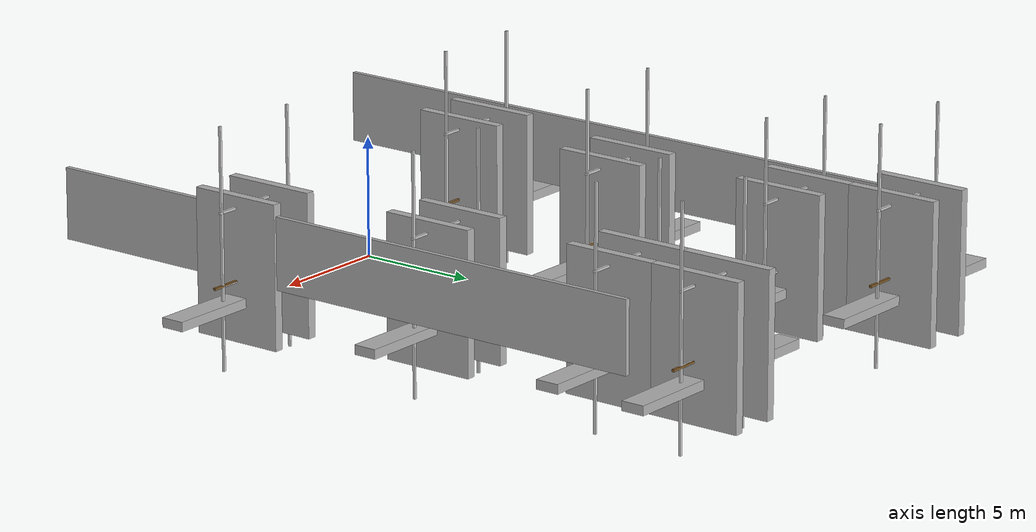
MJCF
<mujoco model="construction_scene">
  <asset>
    <!-- Textures for construction materials -->
    <texture name="concrete_texture" type="2d" builtin="flat" rgb1="0.7 0.7 0.7" width="100" height="100"/>
    <material name="concrete_material" texture="concrete_texture" reflectance="0.2"/>
    <texture name="wood_texture" type="2d" builtin="flat" rgb1="0.5 0.35 0.15" width="100" height="100"/>
    <material name="wood_material" texture="wood_texture" reflectance="0.2"/>
    <texture name="metal_texture" type="2d" builtin="flat" rgb1="0.8 0.8 0.8" width="100" height="100"/>
    <material name="metal_material" texture="metal_texture" reflectance="0.2"/>
  </asset>

  <worldbody>
    <!-- Large Vertical Wall at the Back (60 feet long) -->
    <body name="back_wall" pos="8 5 0">  <!-- 30 feet behind the robot -->
      <geom name="back_wall_geom" type="box" size="0.1 14 1.5" pos="0 0 2.5" material="concrete_material"/>
    </body>

    <!-- Large Vertical Wall at the Back (60 feet long) -->
    <body name="left_wall" pos="-10 5 0">  <!-- 30 feet behind the robot -->
      <geom name="left_wall_geom" type="box" size="0.1 14 1.5" pos="0 0 2.5" material="concrete_material"/>
    </body>

    <!-- Left Side: Semi-constructed buildings (vertical path) -->
    <!-- Building 1 -->
    <body name="left_building_1" pos="-7 0 0">  <!-- 10 feet to the left of the robot -->
      <!-- Foundation -->
      <geom name="left_foundation_1" type="box" size="5 0.5 0.2" pos="0 0 0.2" material="concrete_material"/>

      <!-- Scaffolding -->
      <body name="left_scaffolding_1" pos="0 0 0">
        <!-- Vertical beams -->
        <geom name="left_scaffold_beam_1_1" type="box" size="0.05 0.05 5" pos="-2 0 2.5" material="metal_material"/>
        <geom name="left_scaffold_beam_1_2" type="box" size="0.05 0.05 5" pos="2 0 2.5" material="metal_material"/>

        <!-- Horizontal beams -->
        <geom name="left_scaffold_beam_1_3" type="box" size="2.1 0.05 0.05" pos="0 0 1" material="metal_material"/>
        <geom name="left_scaffold_beam_1_4" type="box" size="2.1 0.05 0.05" pos="0 0 4" material="metal_material"/>
      </body>

      <!-- Half-constructed walls -->
      <geom name="left_wall_1_1" type="box" size="0.2 2 3" pos="-1 0 1.5" material="concrete_material"/>
      <geom name="left_wall_1_2" type="box" size="0.2 2 3" pos="1 0 1.5" material="concrete_material"/>

      <!-- Construction materials (wooden planks) -->
      <body name="left_planks_1" pos="0 0 0.5">
        <geom name="left_plank_1_1" type="box" size="1 0.05 0.05" pos="-1.5 0 0.5" material="wood_material"/>
        <geom name="left_plank_1_2" type="box" size="1 0.05 0.05" pos="1.5 0 0.5" material="wood_material"/>
      </body>
    </body>

    <!-- Building 2 (4 feet behind Building 1) -->
    <body name="left_building_2" pos="-6 8 0">  <!-- 4 feet behind Building 1 -->
      <!-- Foundation -->
      <geom name="left_foundation_2" type="box" size="5 0.5 0.2" pos="0 0 0.2" material="concrete_material"/>

      <!-- Scaffolding -->
      <body name="left_scaffolding_2" pos="0 0 0">
        <!-- Vertical beams -->
        <geom name="left_scaffold_beam_2_1" type="box" size="0.05 0.05 5" pos="-2 0 2.5" material="metal_material"/>
        <geom name="left_scaffold_beam_2_2" type="box" size="0.05 0.05 5" pos="2 0 2.5" material="metal_material"/>

        <!-- Horizontal beams -->
        <geom name="left_scaffold_beam_2_3" type="box" size="2.1 0.05 0.05" pos="0 0 1" material="metal_material"/>
        <geom name="left_scaffold_beam_2_4" type="box" size="2.1 0.05 0.05" pos="0 0 4" material="metal_material"/>
      </body>

      <!-- Half-constructed walls -->
      <geom name="left_wall_2_1" type="box" size="0.2 2 3" pos="-1 0 1.5" material="concrete_material"/>
      <geom name="left_wall_2_2" type="box" size="0.2 2 3" pos="1 0 1.5" material="concrete_material"/>

      <!-- Construction materials (wooden planks) -->
      <body name="left_planks_2" pos="0 0 0.5">
        <geom name="left_plank_2_1" type="box" size="1 0.05 0.05" pos="-1.5 0 0.5" material="wood_material"/>
        <geom name="left_plank_2_2" type="box" size="1 0.05 0.05" pos="1.5 0 0.5" material="wood_material"/>
      </body>
    </body>

    <!-- Building 3 (4 feet behind Building 2) -->
    <body name="left_building_3" pos="-7 16 0">  <!-- 4 feet behind Building 2 -->
      <!-- Foundation -->
      <geom name="left_foundation_3" type="box" size="5 0.5 0.2" pos="0 0 0.2" material="concrete_material"/>

      <!-- Scaffolding -->
      <body name="left_scaffolding_3" pos="0 0 0">
        <!-- Vertical beams -->
        <geom name="left_scaffold_beam_3_1" type="box" size="0.05 0.05 5" pos="-2 0 2.5" material="metal_material"/>
        <geom name="left_scaffold_beam_3_2" type="box" size="0.05 0.05 5" pos="2 0 2.5" material="metal_material"/>

        <!-- Horizontal beams -->
        <geom name="left_scaffold_beam_3_3" type="box" size="2.1 0.05 0.05" pos="0 0 1" material="metal_material"/>
        <geom name="left_scaffold_beam_3_4" type="box" size="2.1 0.05 0.05" pos="0 0 4" material="metal_material"/>
      </body>

      <!-- Half-constructed walls -->
      <geom name="left_wall_3_1" type="box" size="0.2 2 3" pos="-1 0 1.5" material="concrete_material"/>
      <geom name="left_wall_3_2" type="box" size="0.2 2 3" pos="1 0 1.5" material="concrete_material"/>

      <!-- Construction materials (wooden planks) -->
      <body name="left_planks_3" pos="0 0 0.5">
        <geom name="left_plank_3_1" type="box" size="1 0.05 0.05" pos="-1.5 0 0.5" material="wood_material"/>
        <geom name="left_plank_3_2" type="box" size="1 0.05 0.05" pos="1.5 0 0.5" material="wood_material"/>
      </body>
    </body>

<!-- Building 4 (4 feet behind Building 3) -->

    <body name="left_building_4" pos="-9 20 0">  <!-- 4 feet behind Building 3 -->
      <!-- Foundation -->
      <geom name="left_foundation_4" type="box" size="5 0.5 0.2" pos="0 0 0.2" material="concrete_material"/>

      <!-- Scaffolding -->
      <body name="left_scaffolding_4" pos="0 0 0">
        <!-- Vertical beams -->
        <geom name="left_scaffold_beam_4_1" type="box" size="0.05 0.05 5" pos="-2 0 2.5" material="metal_material"/>
        <geom name="left_scaffold_beam_4_2" type="box" size="0.05 0.05 5" pos="2 0 2.5" material="metal_material"/>

        <!-- Horizontal beams -->
        <geom name="left_scaffold_beam_4_3" type="box" size="2.1 0.05 0.05" pos="0 0 1" material="metal_material"/>
        <geom name="left_scaffold_beam_4_4" type="box" size="2.1 0.05 0.05" pos="0 0 4" material="metal_material"/>
      </body>

      <!-- Half-constructed walls -->
      <geom name="left_wall_4_1" type="box" size="0.2 2 3" pos="-1 0 1.5" material="concrete_material"/>
      <geom name="left_wall_4_2" type="box" size="0.2 2 3" pos="1 0 1.5" material="concrete_material"/>

      <!-- Construction materials (wooden planks) -->
      <body name="left_planks_4" pos="0 0 0.5">
        <geom name="left_plank_4_1" type="box" size="1 0.05 0.05" pos="-1.5 0 0.5" material="wood_material"/>
        <geom name="left_plank_4_2" type="box" size="1 0.05 0.05" pos="1.5 0 0.5" material="wood_material"/>
      </body>
    </body>

    <!-- Right Side: Replicate the left side with a 20-foot gap (vertical path) -->
    <!-- Building 1 -->
    <body name="right_building_1" pos="7 0 0">  <!-- 10 feet to the right of the robot -->
      <!-- Foundation -->
      <geom name="right_foundation_1" type="box" size="5 0.5 0.2" pos="0 0 0.2" material="concrete_material"/>

      <!-- Scaffolding -->
      <body name="right_scaffolding_1" pos="0 0 0">
        <!-- Vertical beams -->
        <geom name="right_scaffold_beam_1_1" type="box" size="0.05 0.05 5" pos="-2 0 2.5" material="metal_material"/>
        <geom name="right_scaffold_beam_1_2" type="box" size="0.05 0.05 5" pos="2 0 2.5" material="metal_material"/>

        <!-- Horizontal beams -->
        <geom name="right_scaffold_beam_1_3" type="box" size="2.1 0.05 0.05" pos="0 0 1" material="metal_material"/>
        <geom name="right_scaffold_beam_1_4" type="box" size="2.1 0.05 0.05" pos="0 0 4" material="metal_material"/>
      </body>

      <!-- Half-constructed walls -->
      <geom name="right_wall_1_1" type="box" size="0.2 2 3" pos="-1 0 1.5" material="concrete_material"/>
      <geom name="right_wall_1_2" type="box" size="0.2 2 3" pos="1 0 1.5" material="concrete_material"/>

      <!-- Construction materials (wooden planks) -->
      <body name="right_planks_1" pos="0 0 0.5">
        <geom name="right_plank_1_1" type="box" size="1 0.05 0.05" pos="-1.5 0 0.5" material="wood_material"/>
        <geom name="right_plank_1_2" type="box" size="1 0.05 0.05" pos="1.5 0 0.5" material="wood_material"/>
      </body>
    </body>

    <!-- Building 2 (4 feet behind Building 1) -->
    <body name="right_building_2" pos="5 8 0">  <!-- 4 feet behind Building 1 -->
      <!-- Foundation -->
      <geom name="right_foundation_2" type="box" size="5 0.5 0.2" pos="0 0 0.2" material="concrete_material"/>

      <!-- Scaffolding -->
      <body name="right_scaffolding_2" pos="0 0 0">
        <!-- Vertical beams -->
        <geom name="right_scaffold_beam_2_1" type="box" size="0.05 0.05 5" pos="-2 0 2.5" material="metal_material"/>
        <geom name="right_scaffold_beam_2_2" type="box" size="0.05 0.05 5" pos="2 0 2.5" material="metal_material"/>

        <!-- Horizontal beams -->
        <geom name="right_scaffold_beam_2_3" type="box" size="2.1 0.05 0.05" pos="0 0 1" material="metal_material"/>
        <geom name="right_scaffold_beam_2_4" type="box" size="2.1 0.05 0.05" pos="0 0 4" material="metal_material"/>
      </body>

      <!-- Half-constructed walls -->
      <geom name="right_wall_2_1" type="box" size="0.2 2 3" pos="-1 0 1.5" material="concrete_material"/>
      <geom name="right_wall_2_2" type="box" size="0.2 2 3" pos="1 0 1.5" material="concrete_material"/>

      <!-- Construction materials (wooden planks) -->
      <body name="right_planks_2" pos="0 0 0.5">
        <geom name="right_plank_2_1" type="box" size="1 0.05 0.05" pos="-1.5 0 0.5" material="wood_material"/>
        <geom name="right_plank_2_2" type="box" size="1 0.05 0.05" pos="1.5 0 0.5" material="wood_material"/>
      </body>
    </body>

    <!-- Building 3 (4 feet behind Building 2) -->
    <body name="right_building_3" pos="4 16 0">  <!-- 4 feet behind Building 2 -->
      <!-- Foundation -->
      <geom name="right_foundation_3" type="box" size="5 0.5 0.2" pos="0 0 0.2" material="concrete_material"/>

      <!-- Scaffolding -->
      <body name="right_scaffolding_3" pos="0 0 0">
        <!-- Vertical beams -->
        <geom name="right_scaffold_beam_3_1" type="box" size="0.05 0.05 5" pos="-2 0 2.5" material="metal_material"/>
        <geom name="right_scaffold_beam_3_2" type="box" size="0.05 0.05 5" pos="2 0 2.5" material="metal_material"/>

        <!-- Horizontal beams -->
        <geom name="right_scaffold_beam_3_3" type="box" size="2.1 0.05 0.05" pos="0 0 1" material="metal_material"/>
        <geom name="right_scaffold_beam_3_4" type="box" size="2.1 0.05 0.05" pos="0 0 4" material="metal_material"/>
      </body>

      <!-- Half-constructed walls -->
      <geom name="right_wall_3_1" type="box" size="0.2 2 3" pos="-1 0 1.5" material="concrete_material"/>
      <geom name="right_wall_3_2" type="box" size="0.2 2 3" pos="1 0 1.5" material="concrete_material"/>

      <!-- Construction materials (wooden planks) -->
      <body name="right_planks_3" pos="0 0 0.5">
        <geom name="right_plank_3_1" type="box" size="1 0.05 0.05" pos="-1.5 0 0.5" material="wood_material"/>
        <geom name="right_plank_3_2" type="box" size="1 0.05 0.05" pos="1.5 0 0.5" material="wood_material"/>
      </body>
    </body>

    <!-- Building 4 (4 feet behind Building 3) -->
<body name="right_building_4" pos="4 20 0">  <!-- 4 feet behind Building 3 -->
  <!-- Foundation -->
  <geom name="right_foundation_4" type="box" size="5 0.5 0.2" pos="0 0 0.2" material="concrete_material"/>

  <!-- Scaffolding -->
  <body name="right_scaffolding_4" pos="0 0 0">
    <!-- Vertical beams -->
    <geom name="right_scaffold_beam_4_1" type="box" size="0.05 0.05 5" pos="-2 0 2.5" material="metal_material"/>
    <geom name="right_scaffold_beam_4_2" type="box" size="0.05 0.05 5" pos="2 0 2.5" material="metal_material"/>

    <!-- Horizontal beams -->
    <geom name="right_scaffold_beam_4_3" type="box" size="2.1 0.05 0.05" pos="0 0 1" material="metal_material"/>
    <geom name="right_scaffold_beam_4_4" type="box" size="2.1 0.05 0.05" pos="0 0 4" material="metal_material"/>
  </body>

  <!-- Half-constructed walls -->
  <geom name="right_wall_4_1" type="box" size="0.2 2 3" pos="-1 0 1.5" material="concrete_material"/>
  <geom name="right_wall_4_2" type="box" size="0.2 2 3" pos="1 0 1.5" material="concrete_material"/>

  <!-- Construction materials (wooden planks) -->
  <body name="right_planks_4" pos="0 0 0.5">
    <geom name="right_plank_4_1" type="box" size="1 0.05 0.05" pos="-1.5 0 0.5" material="wood_material"/>
    <geom name="right_plank_4_2" type="box" size="1 0.05 0.05" pos="1.5 0 0.5" material="wood_material"/>
  </body>
</body>

  </worldbody>
</mujoco>
